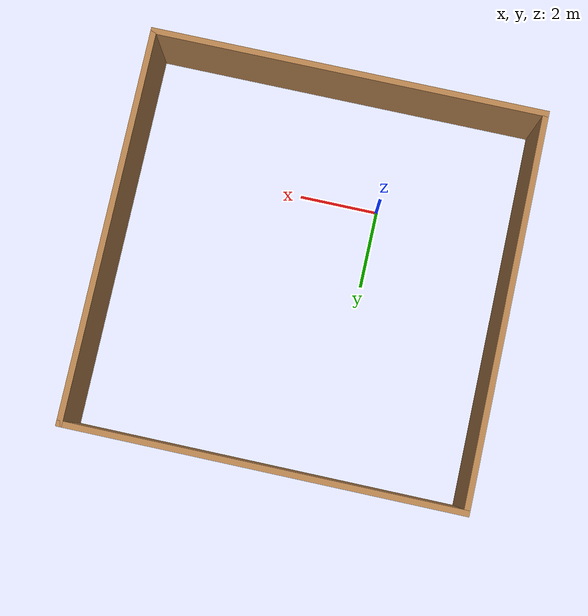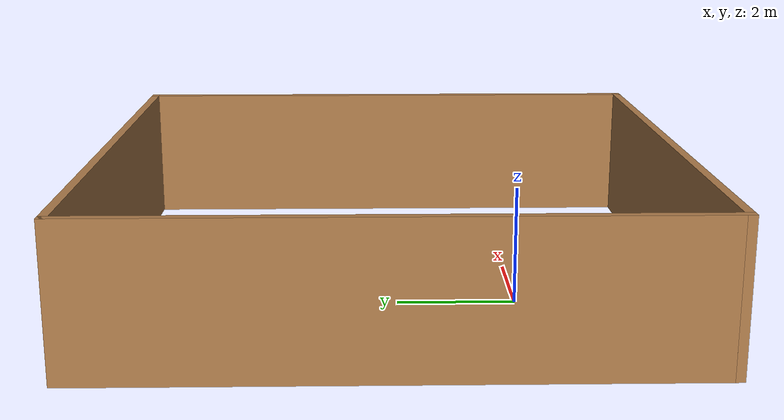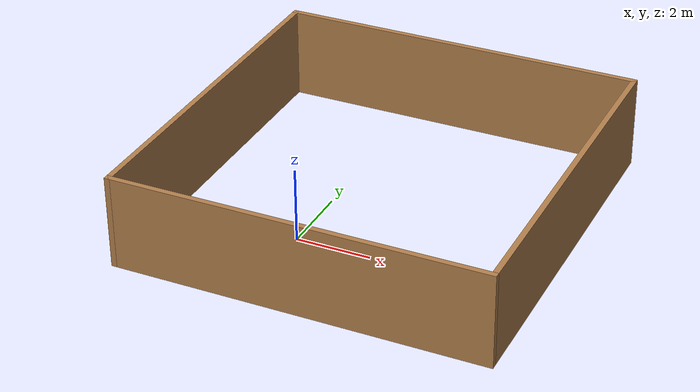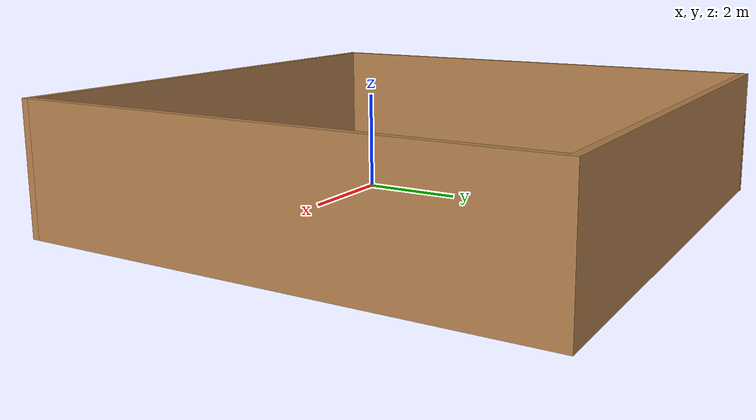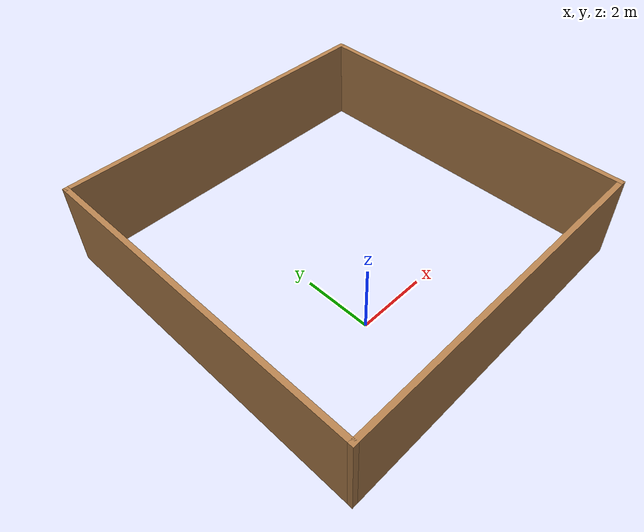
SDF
<?xml version='1.0'?>
<sdf version='1.7'>
  <model name='room2'>
    <pose>1.41395 2.07666 0 0 -0 0</pose>
    <link name='Wall_4'>
      <collision name='Wall_4_Collision'>
        <geometry>
          <box>
            <size>10 0.15 2.5</size>
          </box>
        </geometry>
        <pose>0 0 1.25 0 -0 0</pose>
      </collision>
      <visual name='Wall_4_Visual'>
        <pose>0 0 1.25 0 -0 0</pose>
        <geometry>
          <box>
            <size>10 0.15 2.5</size>
          </box>
        </geometry>
        <material>
          <script>
            <uri>file://media/materials/scripts/gazebo.material</uri>
            <name>Gazebo/Wood</name>
          </script>
          <ambient>1 1 1 1</ambient>
        </material>
        <meta>
          <layer>0</layer>
        </meta>
      </visual>
      <pose>-0 4.925 0 0 -0 0</pose>
    </link>
    <link name='Wall_5'>
      <collision name='Wall_5_Collision'>
        <geometry>
          <box>
            <size>10 0.15 2.5</size>
          </box>
        </geometry>
        <pose>0 0 1.25 0 -0 0</pose>
      </collision>
      <visual name='Wall_5_Visual'>
        <pose>0 0 1.25 0 -0 0</pose>
        <geometry>
          <box>
            <size>10 0.15 2.5</size>
          </box>
        </geometry>
        <material>
          <script>
            <uri>file://media/materials/scripts/gazebo.material</uri>
            <name>Gazebo/Wood</name>
          </script>
          <ambient>1 1 1 1</ambient>
        </material>
        <meta>
          <layer>0</layer>
        </meta>
      </visual>
      <pose>4.925 -0 0 0 -0 -1.5708</pose>
    </link>
    <link name='Wall_6'>
      <collision name='Wall_6_Collision'>
        <geometry>
          <box>
            <size>10 0.15 2.5</size>
          </box>
        </geometry>
        <pose>0 0 1.25 0 -0 0</pose>
      </collision>
      <visual name='Wall_6_Visual'>
        <pose>0 0 1.25 0 -0 0</pose>
        <geometry>
          <box>
            <size>10 0.15 2.5</size>
          </box>
        </geometry>
        <material>
          <script>
            <uri>file://media/materials/scripts/gazebo.material</uri>
            <name>Gazebo/Wood</name>
          </script>
          <ambient>1 1 1 1</ambient>
        </material>
        <meta>
          <layer>0</layer>
        </meta>
      </visual>
      <pose>-0 -4.925 0 0 -0 3.14159</pose>
    </link>
    <link name='Wall_7'>
      <collision name='Wall_7_Collision'>
        <geometry>
          <box>
            <size>10 0.15 2.5</size>
          </box>
        </geometry>
        <pose>0 0 1.25 0 -0 0</pose>
      </collision>
      <visual name='Wall_7_Visual'>
        <pose>0 0 1.25 0 -0 0</pose>
        <geometry>
          <box>
            <size>10 0.15 2.5</size>
          </box>
        </geometry>
        <material>
          <script>
            <uri>file://media/materials/scripts/gazebo.material</uri>
            <name>Gazebo/Wood</name>
          </script>
          <ambient>1 1 1 1</ambient>
        </material>
        <meta>
          <layer>0</layer>
        </meta>
      </visual>
      <pose>-4.925 -0 0 0 -0 1.5708</pose>
    </link>
    <static>1</static>
  </model>
</sdf>
